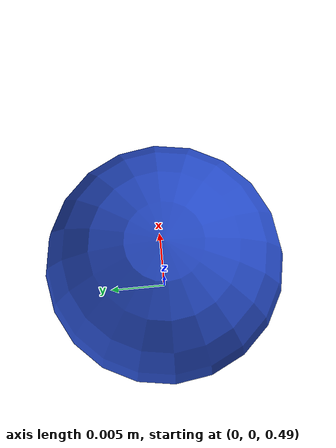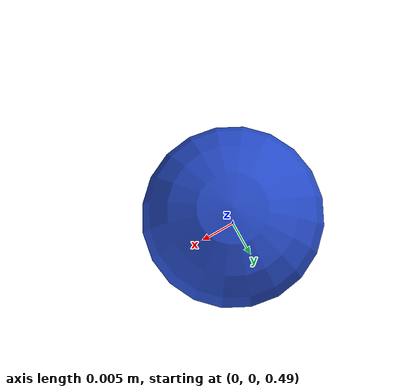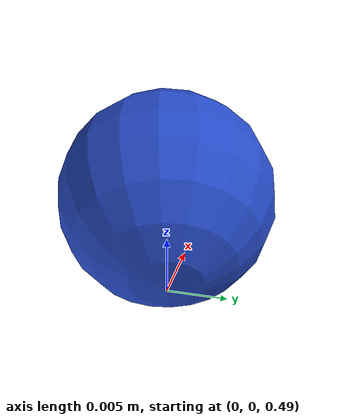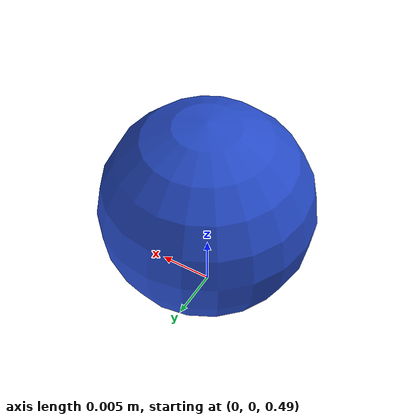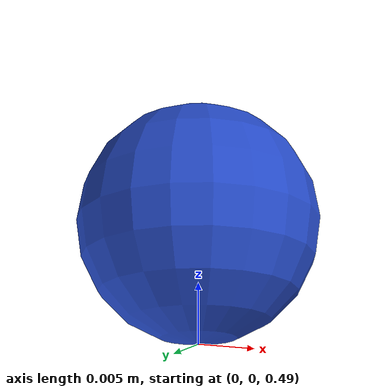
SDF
<?xml version='1.0'?>
<sdf version="1.4">
  <model name="blue_fish">
    <pose>0 0 0.5 0 0 0</pose>
    <static>true</static>
    <link name="link">
      <inertial>
        <mass>1.0</mass>
        <inertia> <!-- inertias are tricky to compute -->
          <!-- http://gazebosim.org/tutorials?tut=inertia&cat=build_robot -->
          <ixx>0.083</ixx>       <!-- for a box: ixx = 0.083 * mass * (y*y + z*z) -->
          <ixy>0.0</ixy>         <!-- for a box: ixy = 0 -->
          <ixz>0.0</ixz>         <!-- for a box: ixz = 0 -->
          <iyy>0.083</iyy>       <!-- for a box: iyy = 0.083 * mass * (x*x + z*z) -->
          <iyz>0.0</iyz>         <!-- for a box: iyz = 0 -->
          <izz>0.083</izz>       <!-- for a box: izz = 0.083 * mass * (x*x + y*y) -->
        </inertia>
      </inertial>
      <collision name="collision">
        <geometry>
            <sphere>
              <radius>0.01</radius>
            </sphere>
          </geometry>
      </collision>
      <visual name="visual">
        <geometry>
            <sphere>
              <radius>0.01</radius>
            </sphere>
          </geometry>
            <material>
            <script>
        <name>Gazebo/Blue</name>
      </script>
    </material>
      </visual>
    </link>
  </model>
</sdf>
